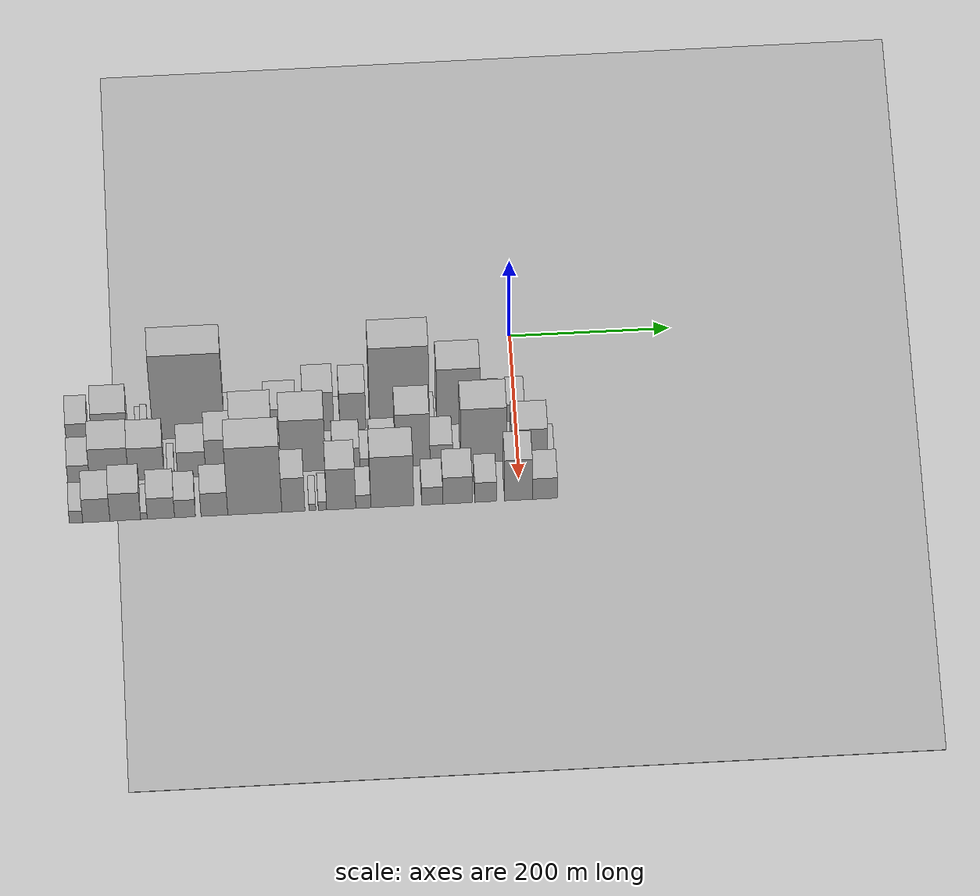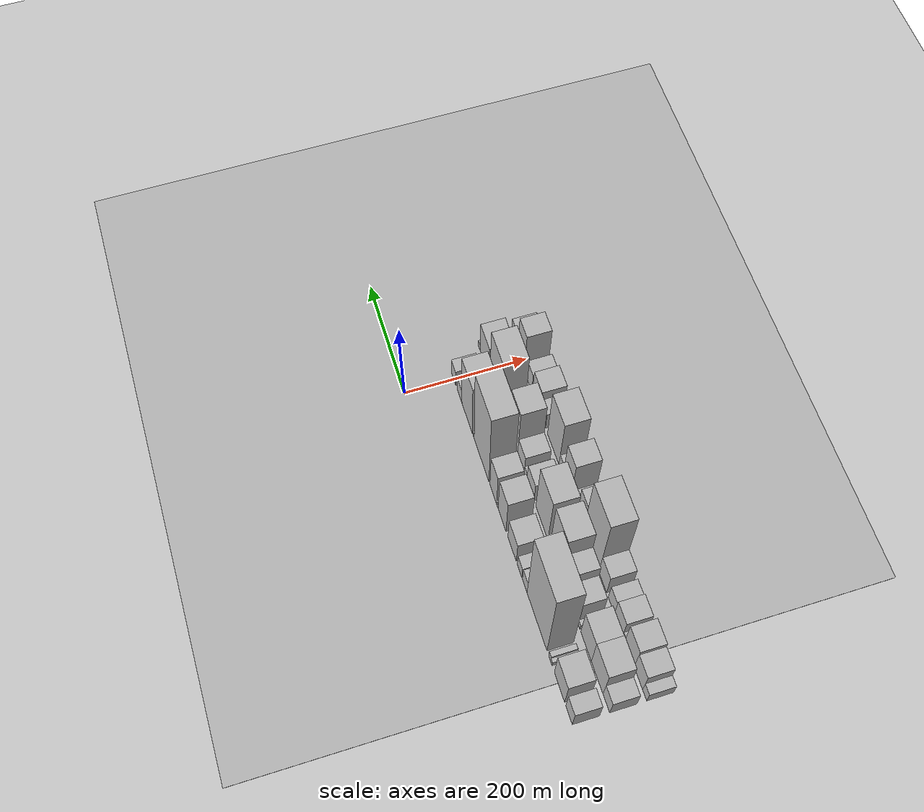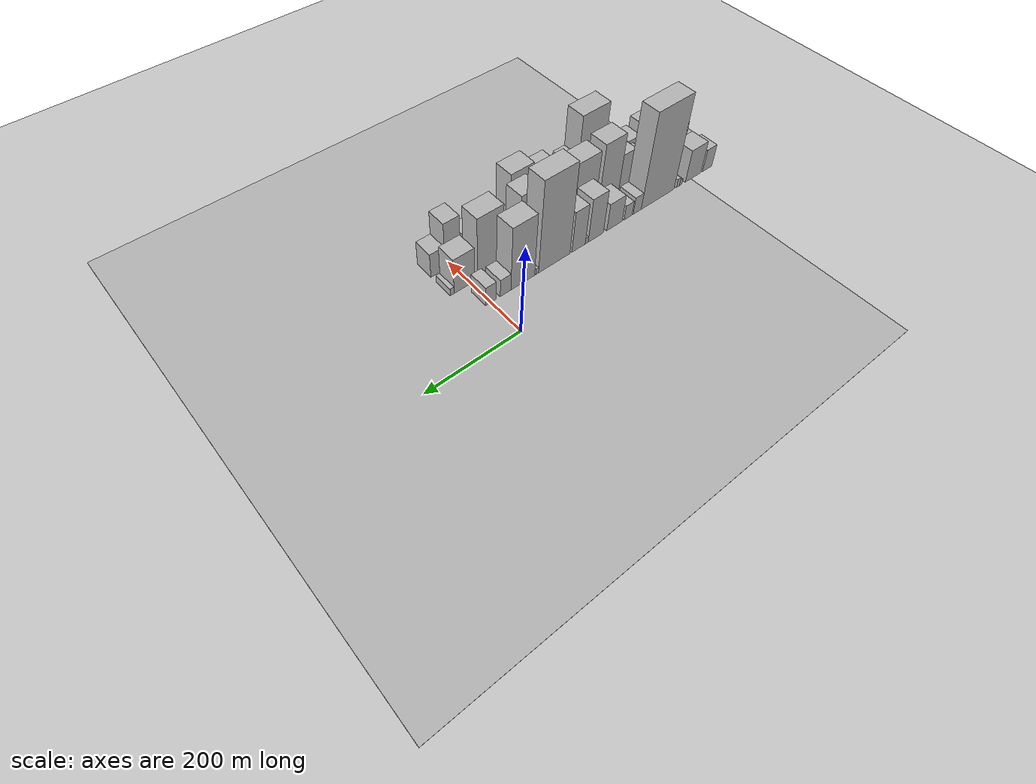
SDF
<sdf version="1.6">
 <world name="default">
  <include><name>ground_plane_1</name><uri>model://HANNAS_ground_plane</uri></include>
  <include>
   <name>ground_plane_2</name>
   <uri>model://HANNAS_ground_plane</uri>
   <pose>100 0 0  0 0 0</pose>
  </include>
  <model name="building_1">
   <static>1</static>
   <pose>100.0000 -546.4827 0 0.000000 0.000000 0.000000</pose>
   <link name="link">
    <pose>0 0 27.00 0 0 0</pose>
    <collision name="collision"><geometry><box><size>40.0000 27.0345 54.0000</size></box></geometry></collision>
    <visual name="visual">
     <cast_shadows>0</cast_shadows>
     <geometry><box><size>40.0000 27.0345 54.0000</size></box></geometry>
     <material>
      <script>
       <uri>model://HANNAS_wall/materials/scripts</uri>
       <uri>model://HANNAS_wall/materials/textures</uri>
       <name>vrc/HANNAS_wall</name>
      </script>
     </material>
    </visual>
   </link>
  </model>
  <model name="building_2">
   <static>1</static>
   <pose>100.0000 -505.8893 0 0.000000 0.000000 0.000000</pose>
   <link name="link">
    <pose>0 0 39.00 0 0 0</pose>
    <collision name="collision"><geometry><box><size>40.0000 44.1524 78.0000</size></box></geometry></collision>
    <visual name="visual">
     <cast_shadows>0</cast_shadows>
     <geometry><box><size>40.0000 44.1524 78.0000</size></box></geometry>
     <material>
      <script>
       <uri>model://HANNAS_wall/materials/scripts</uri>
       <uri>model://HANNAS_wall/materials/textures</uri>
       <name>vrc/HANNAS_wall</name>
      </script>
     </material>
    </visual>
   </link>
  </model>
  <model name="building_3">
   <static>1</static>
   <pose>100.0000 -470.5496 0 0.000000 0.000000 0.000000</pose>
   <link name="link">
    <pose>0 0 7.50 0 0 0</pose>
    <collision name="collision"><geometry><box><size>40.0000 6.5270 15.0000</size></box></geometry></collision>
    <visual name="visual">
     <cast_shadows>0</cast_shadows>
     <geometry><box><size>40.0000 6.5270 15.0000</size></box></geometry>
     <material>
      <script>
       <uri>model://HANNAS_wall/materials/scripts</uri>
       <uri>model://HANNAS_wall/materials/textures</uri>
       <name>vrc/HANNAS_wall</name>
      </script>
     </material>
    </visual>
   </link>
  </model>
  <model name="building_4">
   <static>1</static>
   <pose>100.0000 -462.9985 0 0.000000 0.000000 0.000000</pose>
   <link name="link">
    <pose>0 0 10.50 0 0 0</pose>
    <collision name="collision"><geometry><box><size>40.0000 8.5751 21.0000</size></box></geometry></collision>
    <visual name="visual">
     <cast_shadows>0</cast_shadows>
     <geometry><box><size>40.0000 8.5751 21.0000</size></box></geometry>
     <material>
      <script>
       <uri>model://HANNAS_wall/materials/scripts</uri>
       <uri>model://HANNAS_wall/materials/textures</uri>
       <name>vrc/HANNAS_wall</name>
      </script>
     </material>
    </visual>
   </link>
  </model>
  <model name="building_5">
   <static>1</static>
   <pose>100.0000 -407.1625 0 0.000000 0.000000 0.000000</pose>
   <link name="link">
    <pose>0 0 112.50 0 0 0</pose>
    <collision name="collision"><geometry><box><size>40.0000 89.0970 225.0000</size></box></geometry></collision>
    <visual name="visual">
     <cast_shadows>0</cast_shadows>
     <geometry><box><size>40.0000 89.0970 225.0000</size></box></geometry>
     <material>
      <script>
       <uri>model://HANNAS_wall/materials/scripts</uri>
       <uri>model://HANNAS_wall/materials/textures</uri>
       <name>vrc/HANNAS_wall</name>
      </script>
     </material>
    </visual>
   </link>
  </model>
  <model name="building_6">
   <static>1</static>
   <pose>100.0000 -352.0170 0 0.000000 0.000000 0.000000</pose>
   <link name="link">
    <pose>0 0 21.00 0 0 0</pose>
    <collision name="collision"><geometry><box><size>40.0000 21.1940 42.0000</size></box></geometry></collision>
    <visual name="visual">
     <cast_shadows>0</cast_shadows>
     <geometry><box><size>40.0000 21.1940 42.0000</size></box></geometry>
     <material>
      <script>
       <uri>model://HANNAS_wall/materials/scripts</uri>
       <uri>model://HANNAS_wall/materials/textures</uri>
       <name>vrc/HANNAS_wall</name>
      </script>
     </material>
    </visual>
   </link>
  </model>
  <model name="building_7">
   <static>1</static>
   <pose>100.0000 -328.0672 0 0.000000 0.000000 0.000000</pose>
   <link name="link">
    <pose>0 0 18.00 0 0 0</pose>
    <collision name="collision"><geometry><box><size>40.0000 20.7055 36.0000</size></box></geometry></collision>
    <visual name="visual">
     <cast_shadows>0</cast_shadows>
     <geometry><box><size>40.0000 20.7055 36.0000</size></box></geometry>
     <material>
      <script>
       <uri>model://HANNAS_wall/materials/scripts</uri>
       <uri>model://HANNAS_wall/materials/textures</uri>
       <name>vrc/HANNAS_wall</name>
      </script>
     </material>
    </visual>
   </link>
  </model>
  <model name="building_8">
   <static>1</static>
   <pose>100.0000 -292.9577 0 0.000000 0.000000 0.000000</pose>
   <link name="link">
    <pose>0 0 33.00 0 0 0</pose>
    <collision name="collision"><geometry><box><size>40.0000 39.5136 66.0000</size></box></geometry></collision>
    <visual name="visual">
     <cast_shadows>0</cast_shadows>
     <geometry><box><size>40.0000 39.5136 66.0000</size></box></geometry>
     <material>
      <script>
       <uri>model://HANNAS_wall/materials/scripts</uri>
       <uri>model://HANNAS_wall/materials/textures</uri>
       <name>vrc/HANNAS_wall</name>
      </script>
     </material>
    </visual>
   </link>
  </model>
  <model name="building_9">
   <static>1</static>
   <pose>100.0000 -245.3220 0 0.000000 0.000000 0.000000</pose>
   <link name="link">
    <pose>0 0 52.50 0 0 0</pose>
    <collision name="collision"><geometry><box><size>40.0000 37.7578 105.0000</size></box></geometry></collision>
    <visual name="visual">
     <cast_shadows>0</cast_shadows>
     <geometry><box><size>40.0000 37.7578 105.0000</size></box></geometry>
     <material>
      <script>
       <uri>model://HANNAS_wall/materials/scripts</uri>
       <uri>model://HANNAS_wall/materials/textures</uri>
       <name>vrc/HANNAS_wall</name>
      </script>
     </material>
    </visual>
   </link>
  </model>
  <model name="building_10">
   <static>1</static>
   <pose>100.0000 -222.7115 0 0.000000 0.000000 0.000000</pose>
   <link name="link">
    <pose>0 0 7.50 0 0 0</pose>
    <collision name="collision"><geometry><box><size>40.0000 7.4633 15.0000</size></box></geometry></collision>
    <visual name="visual">
     <cast_shadows>0</cast_shadows>
     <geometry><box><size>40.0000 7.4633 15.0000</size></box></geometry>
     <material>
      <script>
       <uri>model://HANNAS_wall/materials/scripts</uri>
       <uri>model://HANNAS_wall/materials/textures</uri>
       <name>vrc/HANNAS_wall</name>
      </script>
     </material>
    </visual>
   </link>
  </model>
  <model name="building_11">
   <static>1</static>
   <pose>100.0000 -202.6942 0 0.000000 0.000000 0.000000</pose>
   <link name="link">
    <pose>0 0 49.50 0 0 0</pose>
    <collision name="collision"><geometry><box><size>40.0000 32.5713 99.0000</size></box></geometry></collision>
    <visual name="visual">
     <cast_shadows>0</cast_shadows>
     <geometry><box><size>40.0000 32.5713 99.0000</size></box></geometry>
     <material>
      <script>
       <uri>model://HANNAS_wall/materials/scripts</uri>
       <uri>model://HANNAS_wall/materials/textures</uri>
       <name>vrc/HANNAS_wall</name>
      </script>
     </material>
    </visual>
   </link>
  </model>
  <model name="building_12">
   <static>1</static>
   <pose>100.0000 -144.2849 0 0.000000 0.000000 0.000000</pose>
   <link name="link">
    <pose>0 0 108.00 0 0 0</pose>
    <collision name="collision"><geometry><box><size>40.0000 74.2475 216.0000</size></box></geometry></collision>
    <visual name="visual">
     <cast_shadows>0</cast_shadows>
     <geometry><box><size>40.0000 74.2475 216.0000</size></box></geometry>
     <material>
      <script>
       <uri>model://HANNAS_wall/materials/scripts</uri>
       <uri>model://HANNAS_wall/materials/textures</uri>
       <name>vrc/HANNAS_wall</name>
      </script>
     </material>
    </visual>
   </link>
  </model>
  <model name="building_13">
   <static>1</static>
   <pose>100.0000 -104.0315 0 0.000000 0.000000 0.000000</pose>
   <link name="link">
    <pose>0 0 7.50 0 0 0</pose>
    <collision name="collision"><geometry><box><size>40.0000 6.2592 15.0000</size></box></geometry></collision>
    <visual name="visual">
     <cast_shadows>0</cast_shadows>
     <geometry><box><size>40.0000 6.2592 15.0000</size></box></geometry>
     <material>
      <script>
       <uri>model://HANNAS_wall/materials/scripts</uri>
       <uri>model://HANNAS_wall/materials/textures</uri>
       <name>vrc/HANNAS_wall</name>
      </script>
     </material>
    </visual>
   </link>
  </model>
  <model name="building_14">
   <static>1</static>
   <pose>100.0000 -70.8796 0 0.000000 0.000000 0.000000</pose>
   <link name="link">
    <pose>0 0 75.00 0 0 0</pose>
    <collision name="collision"><geometry><box><size>40.0000 54.0445 150.0000</size></box></geometry></collision>
    <visual name="visual">
     <cast_shadows>0</cast_shadows>
     <geometry><box><size>40.0000 54.0445 150.0000</size></box></geometry>
     <material>
      <script>
       <uri>model://HANNAS_wall/materials/scripts</uri>
       <uri>model://HANNAS_wall/materials/textures</uri>
       <name>vrc/HANNAS_wall</name>
      </script>
     </material>
    </visual>
   </link>
  </model>
  <model name="building_15">
   <static>1</static>
   <pose>100.0000 -31.9714 0 0.000000 0.000000 0.000000</pose>
   <link name="link">
    <pose>0 0 21.00 0 0 0</pose>
    <collision name="collision"><geometry><box><size>40.0000 23.7720 42.0000</size></box></geometry></collision>
    <visual name="visual">
     <cast_shadows>0</cast_shadows>
     <geometry><box><size>40.0000 23.7720 42.0000</size></box></geometry>
     <material>
      <script>
       <uri>model://HANNAS_wall/materials/scripts</uri>
       <uri>model://HANNAS_wall/materials/textures</uri>
       <name>vrc/HANNAS_wall</name>
      </script>
     </material>
    </visual>
   </link>
  </model>
  <model name="building_16">
   <static>1</static>
   <pose>100.0000 0.2246 0 0.000000 0.000000 0.000000</pose>
   <link name="link">
    <pose>0 0 22.50 0 0 0</pose>
    <collision name="collision"><geometry><box><size>40.0000 22.6201 45.0000</size></box></geometry></collision>
    <visual name="visual">
     <cast_shadows>0</cast_shadows>
     <geometry><box><size>40.0000 22.6201 45.0000</size></box></geometry>
     <material>
      <script>
       <uri>model://HANNAS_wall/materials/scripts</uri>
       <uri>model://HANNAS_wall/materials/textures</uri>
       <name>vrc/HANNAS_wall</name>
      </script>
     </material>
    </visual>
   </link>
  </model>
  <model name="building_36">
   <static>1</static>
   <pose>155.0000 -546.4578 0 0.000000 0.000000 0.000000</pose>
   <link name="link">
    <pose>0 0 24.00 0 0 0</pose>
    <collision name="collision"><geometry><box><size>40.0000 27.0844 48.0000</size></box></geometry></collision>
    <visual name="visual">
     <cast_shadows>0</cast_shadows>
     <geometry><box><size>40.0000 27.0844 48.0000</size></box></geometry>
     <material>
      <script>
       <uri>model://HANNAS_wall/materials/scripts</uri>
       <uri>model://HANNAS_wall/materials/textures</uri>
       <name>vrc/HANNAS_wall</name>
      </script>
     </material>
    </visual>
   </link>
  </model>
  <model name="building_37">
   <static>1</static>
   <pose>155.0000 -508.7451 0 0.000000 0.000000 0.000000</pose>
   <link name="link">
    <pose>0 0 45.00 0 0 0</pose>
    <collision name="collision"><geometry><box><size>40.0000 48.3409 90.0000</size></box></geometry></collision>
    <visual name="visual">
     <cast_shadows>0</cast_shadows>
     <geometry><box><size>40.0000 48.3409 90.0000</size></box></geometry>
     <material>
      <script>
       <uri>model://HANNAS_wall/materials/scripts</uri>
       <uri>model://HANNAS_wall/materials/textures</uri>
       <name>vrc/HANNAS_wall</name>
      </script>
     </material>
    </visual>
   </link>
  </model>
  <model name="building_38">
   <static>1</static>
   <pose>155.0000 -462.3962 0 0.000000 0.000000 0.000000</pose>
   <link name="link">
    <pose>0 0 43.50 0 0 0</pose>
    <collision name="collision"><geometry><box><size>40.0000 44.3568 87.0000</size></box></geometry></collision>
    <visual name="visual">
     <cast_shadows>0</cast_shadows>
     <geometry><box><size>40.0000 44.3568 87.0000</size></box></geometry>
     <material>
      <script>
       <uri>model://HANNAS_wall/materials/scripts</uri>
       <uri>model://HANNAS_wall/materials/textures</uri>
       <name>vrc/HANNAS_wall</name>
      </script>
     </material>
    </visual>
   </link>
  </model>
  <model name="building_39">
   <static>1</static>
   <pose>155.0000 -431.8418 0 0.000000 0.000000 0.000000</pose>
   <link name="link">
    <pose>0 0 9.00 0 0 0</pose>
    <collision name="collision"><geometry><box><size>40.0000 8.7520 18.0000</size></box></geometry></collision>
    <visual name="visual">
     <cast_shadows>0</cast_shadows>
     <geometry><box><size>40.0000 8.7520 18.0000</size></box></geometry>
     <material>
      <script>
       <uri>model://HANNAS_wall/materials/scripts</uri>
       <uri>model://HANNAS_wall/materials/textures</uri>
       <name>vrc/HANNAS_wall</name>
      </script>
     </material>
    </visual>
   </link>
  </model>
  <model name="building_40">
   <static>1</static>
   <pose>155.0000 -405.9061 0 0.000000 0.000000 0.000000</pose>
   <link name="link">
    <pose>0 0 34.50 0 0 0</pose>
    <collision name="collision"><geometry><box><size>40.0000 35.1195 69.0000</size></box></geometry></collision>
    <visual name="visual">
     <cast_shadows>0</cast_shadows>
     <geometry><box><size>40.0000 35.1195 69.0000</size></box></geometry>
     <material>
      <script>
       <uri>model://HANNAS_wall/materials/scripts</uri>
       <uri>model://HANNAS_wall/materials/textures</uri>
       <name>vrc/HANNAS_wall</name>
      </script>
     </material>
    </visual>
   </link>
  </model>
  <model name="building_41">
   <static>1</static>
   <pose>155.0000 -372.1673 0 0.000000 0.000000 0.000000</pose>
   <link name="link">
    <pose>0 0 49.50 0 0 0</pose>
    <collision name="collision"><geometry><box><size>40.0000 32.3580 99.0000</size></box></geometry></collision>
    <visual name="visual">
     <cast_shadows>0</cast_shadows>
     <geometry><box><size>40.0000 32.3580 99.0000</size></box></geometry>
     <material>
      <script>
       <uri>model://HANNAS_wall/materials/scripts</uri>
       <uri>model://HANNAS_wall/materials/textures</uri>
       <name>vrc/HANNAS_wall</name>
      </script>
     </material>
    </visual>
   </link>
  </model>
  <model name="building_42">
   <static>1</static>
   <pose>155.0000 -330.2825 0 0.000000 0.000000 0.000000</pose>
   <link name="link">
    <pose>0 0 75.00 0 0 0</pose>
    <collision name="collision"><geometry><box><size>40.0000 51.4116 150.0000</size></box></geometry></collision>
    <visual name="visual">
     <cast_shadows>0</cast_shadows>
     <geometry><box><size>40.0000 51.4116 150.0000</size></box></geometry>
     <material>
      <script>
       <uri>model://HANNAS_wall/materials/scripts</uri>
       <uri>model://HANNAS_wall/materials/textures</uri>
       <name>vrc/HANNAS_wall</name>
      </script>
     </material>
    </visual>
   </link>
  </model>
  <model name="building_43">
   <static>1</static>
   <pose>155.0000 -299.7764 0 0.000000 0.000000 0.000000</pose>
   <link name="link">
    <pose>0 0 12.00 0 0 0</pose>
    <collision name="collision"><geometry><box><size>40.0000 9.6006 24.0000</size></box></geometry></collision>
    <visual name="visual">
     <cast_shadows>0</cast_shadows>
     <geometry><box><size>40.0000 9.6006 24.0000</size></box></geometry>
     <material>
      <script>
       <uri>model://HANNAS_wall/materials/scripts</uri>
       <uri>model://HANNAS_wall/materials/textures</uri>
       <name>vrc/HANNAS_wall</name>
      </script>
     </material>
    </visual>
   </link>
  </model>
  <model name="building_44">
   <static>1</static>
   <pose>155.0000 -267.2035 0 0.000000 0.000000 0.000000</pose>
   <link name="link">
    <pose>0 0 70.50 0 0 0</pose>
    <collision name="collision"><geometry><box><size>40.0000 55.5452 141.0000</size></box></geometry></collision>
    <visual name="visual">
     <cast_shadows>0</cast_shadows>
     <geometry><box><size>40.0000 55.5452 141.0000</size></box></geometry>
     <material>
      <script>
       <uri>model://HANNAS_wall/materials/scripts</uri>
       <uri>model://HANNAS_wall/materials/textures</uri>
       <name>vrc/HANNAS_wall</name>
      </script>
     </material>
    </visual>
   </link>
  </model>
  <model name="building_45">
   <static>1</static>
   <pose>155.0000 -213.5299 0 0.000000 0.000000 0.000000</pose>
   <link name="link">
    <pose>0 0 28.50 0 0 0</pose>
    <collision name="collision"><geometry><box><size>40.0000 33.8022 57.0000</size></box></geometry></collision>
    <visual name="visual">
     <cast_shadows>0</cast_shadows>
     <geometry><box><size>40.0000 33.8022 57.0000</size></box></geometry>
     <material>
      <script>
       <uri>model://HANNAS_wall/materials/scripts</uri>
       <uri>model://HANNAS_wall/materials/textures</uri>
       <name>vrc/HANNAS_wall</name>
      </script>
     </material>
    </visual>
   </link>
  </model>
  <model name="building_46">
   <static>1</static>
   <pose>155.0000 -190.4386 0 0.000000 0.000000 0.000000</pose>
   <link name="link">
    <pose>0 0 13.50 0 0 0</pose>
    <collision name="collision"><geometry><box><size>40.0000 12.3804 27.0000</size></box></geometry></collision>
    <visual name="visual">
     <cast_shadows>0</cast_shadows>
     <geometry><box><size>40.0000 12.3804 27.0000</size></box></geometry>
     <material>
      <script>
       <uri>model://HANNAS_wall/materials/scripts</uri>
       <uri>model://HANNAS_wall/materials/textures</uri>
       <name>vrc/HANNAS_wall</name>
      </script>
     </material>
    </visual>
   </link>
  </model>
  <model name="building_47">
   <static>1</static>
   <pose>155.0000 -168.1989 0 0.000000 0.000000 0.000000</pose>
   <link name="link">
    <pose>0 0 28.50 0 0 0</pose>
    <collision name="collision"><geometry><box><size>40.0000 32.0989 57.0000</size></box></geometry></collision>
    <visual name="visual">
     <cast_shadows>0</cast_shadows>
     <geometry><box><size>40.0000 32.0989 57.0000</size></box></geometry>
     <material>
      <script>
       <uri>model://HANNAS_wall/materials/scripts</uri>
       <uri>model://HANNAS_wall/materials/textures</uri>
       <name>vrc/HANNAS_wall</name>
      </script>
     </material>
    </visual>
   </link>
  </model>
  <model name="building_48">
   <static>1</static>
   <pose>155.0000 -130.7541 0 0.000000 0.000000 0.000000</pose>
   <link name="link">
    <pose>0 0 70.50 0 0 0</pose>
    <collision name="collision"><geometry><box><size>40.0000 42.7907 141.0000</size></box></geometry></collision>
    <visual name="visual">
     <cast_shadows>0</cast_shadows>
     <geometry><box><size>40.0000 42.7907 141.0000</size></box></geometry>
     <material>
      <script>
       <uri>model://HANNAS_wall/materials/scripts</uri>
       <uri>model://HANNAS_wall/materials/textures</uri>
       <name>vrc/HANNAS_wall</name>
      </script>
     </material>
    </visual>
   </link>
  </model>
  <model name="building_49">
   <static>1</static>
   <pose>155.0000 -95.1985 0 0.000000 0.000000 0.000000</pose>
   <link name="link">
    <pose>0 0 27.00 0 0 0</pose>
    <collision name="collision"><geometry><box><size>40.0000 28.3204 54.0000</size></box></geometry></collision>
    <visual name="visual">
     <cast_shadows>0</cast_shadows>
     <geometry><box><size>40.0000 28.3204 54.0000</size></box></geometry>
     <material>
      <script>
       <uri>model://HANNAS_wall/materials/scripts</uri>
       <uri>model://HANNAS_wall/materials/textures</uri>
       <name>vrc/HANNAS_wall</name>
      </script>
     </material>
    </visual>
   </link>
  </model>
  <model name="building_50">
   <static>1</static>
   <pose>155.0000 -42.5149 0 0.000000 0.000000 0.000000</pose>
   <link name="link">
    <pose>0 0 73.50 0 0 0</pose>
    <collision name="collision"><geometry><box><size>40.0000 57.0469 147.0000</size></box></geometry></collision>
    <visual name="visual">
     <cast_shadows>0</cast_shadows>
     <geometry><box><size>40.0000 57.0469 147.0000</size></box></geometry>
     <material>
      <script>
       <uri>model://HANNAS_wall/materials/scripts</uri>
       <uri>model://HANNAS_wall/materials/textures</uri>
       <name>vrc/HANNAS_wall</name>
      </script>
     </material>
    </visual>
   </link>
  </model>
  <model name="building_51">
   <static>1</static>
   <pose>155.0000 14.4731 0 0.000000 0.000000 0.000000</pose>
   <link name="link">
    <pose>0 0 42.00 0 0 0</pose>
    <collision name="collision"><geometry><box><size>40.0000 44.9290 84.0000</size></box></geometry></collision>
    <visual name="visual">
     <cast_shadows>0</cast_shadows>
     <geometry><box><size>40.0000 44.9290 84.0000</size></box></geometry>
     <material>
      <script>
       <uri>model://HANNAS_wall/materials/scripts</uri>
       <uri>model://HANNAS_wall/materials/textures</uri>
       <name>vrc/HANNAS_wall</name>
      </script>
     </material>
    </visual>
   </link>
  </model>
  <model name="building_52">
   <static>1</static>
   <pose>155.0000 41.1612 0 0.000000 0.000000 0.000000</pose>
   <link name="link">
    <pose>0 0 9.00 0 0 0</pose>
    <collision name="collision"><geometry><box><size>40.0000 8.4472 18.0000</size></box></geometry></collision>
    <visual name="visual">
     <cast_shadows>0</cast_shadows>
     <geometry><box><size>40.0000 8.4472 18.0000</size></box></geometry>
     <material>
      <script>
       <uri>model://HANNAS_wall/materials/scripts</uri>
       <uri>model://HANNAS_wall/materials/textures</uri>
       <name>vrc/HANNAS_wall</name>
      </script>
     </material>
    </visual>
   </link>
  </model>
  <model name="building_71">
   <static>1</static>
   <pose>210.0000 -551.7180 0 0.000000 0.000000 0.000000</pose>
   <link name="link">
    <pose>0 0 16.50 0 0 0</pose>
    <collision name="collision"><geometry><box><size>40.0000 16.5641 33.0000</size></box></geometry></collision>
    <visual name="visual">
     <cast_shadows>0</cast_shadows>
     <geometry><box><size>40.0000 16.5641 33.0000</size></box></geometry>
     <material>
      <script>
       <uri>model://HANNAS_wall/materials/scripts</uri>
       <uri>model://HANNAS_wall/materials/textures</uri>
       <name>vrc/HANNAS_wall</name>
      </script>
     </material>
    </visual>
   </link>
  </model>
  <model name="building_72">
   <static>1</static>
   <pose>210.0000 -526.5899 0 0.000000 0.000000 0.000000</pose>
   <link name="link">
    <pose>0 0 31.50 0 0 0</pose>
    <collision name="collision"><geometry><box><size>40.0000 33.6921 63.0000</size></box></geometry></collision>
    <visual name="visual">
     <cast_shadows>0</cast_shadows>
     <geometry><box><size>40.0000 33.6921 63.0000</size></box></geometry>
     <material>
      <script>
       <uri>model://HANNAS_wall/materials/scripts</uri>
       <uri>model://HANNAS_wall/materials/textures</uri>
       <name>vrc/HANNAS_wall</name>
      </script>
     </material>
    </visual>
   </link>
  </model>
  <model name="building_73">
   <static>1</static>
   <pose>210.0000 -490.7086 0 0.000000 0.000000 0.000000</pose>
   <link name="link">
    <pose>0 0 37.50 0 0 0</pose>
    <collision name="collision"><geometry><box><size>40.0000 38.0703 75.0000</size></box></geometry></collision>
    <visual name="visual">
     <cast_shadows>0</cast_shadows>
     <geometry><box><size>40.0000 38.0703 75.0000</size></box></geometry>
     <material>
      <script>
       <uri>model://HANNAS_wall/materials/scripts</uri>
       <uri>model://HANNAS_wall/materials/textures</uri>
       <name>vrc/HANNAS_wall</name>
      </script>
     </material>
    </visual>
   </link>
  </model>
  <model name="building_74">
   <static>1</static>
   <pose>210.0000 -467.5456 0 0.000000 0.000000 0.000000</pose>
   <link name="link">
    <pose>0 0 9.00 0 0 0</pose>
    <collision name="collision"><geometry><box><size>40.0000 8.2558 18.0000</size></box></geometry></collision>
    <visual name="visual">
     <cast_shadows>0</cast_shadows>
     <geometry><box><size>40.0000 8.2558 18.0000</size></box></geometry>
     <material>
      <script>
       <uri>model://HANNAS_wall/materials/scripts</uri>
       <uri>model://HANNAS_wall/materials/textures</uri>
       <name>vrc/HANNAS_wall</name>
      </script>
     </material>
    </visual>
   </link>
  </model>
  <model name="building_75">
   <static>1</static>
   <pose>210.0000 -446.4771 0 0.000000 0.000000 0.000000</pose>
   <link name="link">
    <pose>0 0 28.50 0 0 0</pose>
    <collision name="collision"><geometry><box><size>40.0000 33.8811 57.0000</size></box></geometry></collision>
    <visual name="visual">
     <cast_shadows>0</cast_shadows>
     <geometry><box><size>40.0000 33.8811 57.0000</size></box></geometry>
     <material>
      <script>
       <uri>model://HANNAS_wall/materials/scripts</uri>
       <uri>model://HANNAS_wall/materials/textures</uri>
       <name>vrc/HANNAS_wall</name>
      </script>
     </material>
    </visual>
   </link>
  </model>
  <model name="building_76">
   <static>1</static>
   <pose>210.0000 -416.6348 0 0.000000 0.000000 0.000000</pose>
   <link name="link">
    <pose>0 0 24.00 0 0 0</pose>
    <collision name="collision"><geometry><box><size>40.0000 25.8036 48.0000</size></box></geometry></collision>
    <visual name="visual">
     <cast_shadows>0</cast_shadows>
     <geometry><box><size>40.0000 25.8036 48.0000</size></box></geometry>
     <material>
      <script>
       <uri>model://HANNAS_wall/materials/scripts</uri>
       <uri>model://HANNAS_wall/materials/textures</uri>
       <name>vrc/HANNAS_wall</name>
      </script>
     </material>
    </visual>
   </link>
  </model>
  <model name="building_77">
   <static>1</static>
   <pose>210.0000 -380.1408 0 0.000000 0.000000 0.000000</pose>
   <link name="link">
    <pose>0 0 31.50 0 0 0</pose>
    <collision name="collision"><geometry><box><size>40.0000 33.1842 63.0000</size></box></geometry></collision>
    <visual name="visual">
     <cast_shadows>0</cast_shadows>
     <geometry><box><size>40.0000 33.1842 63.0000</size></box></geometry>
     <material>
      <script>
       <uri>model://HANNAS_wall/materials/scripts</uri>
       <uri>model://HANNAS_wall/materials/textures</uri>
       <name>vrc/HANNAS_wall</name>
      </script>
     </material>
    </visual>
   </link>
  </model>
  <model name="building_78">
   <static>1</static>
   <pose>210.0000 -329.9903 0 0.000000 0.000000 0.000000</pose>
   <link name="link">
    <pose>0 0 91.50 0 0 0</pose>
    <collision name="collision"><geometry><box><size>40.0000 67.1169 183.0000</size></box></geometry></collision>
    <visual name="visual">
     <cast_shadows>0</cast_shadows>
     <geometry><box><size>40.0000 67.1169 183.0000</size></box></geometry>
     <material>
      <script>
       <uri>model://HANNAS_wall/materials/scripts</uri>
       <uri>model://HANNAS_wall/materials/textures</uri>
       <name>vrc/HANNAS_wall</name>
      </script>
     </material>
    </visual>
   </link>
  </model>
  <model name="building_79">
   <static>1</static>
   <pose>210.0000 -282.1036 0 0.000000 0.000000 0.000000</pose>
   <link name="link">
    <pose>0 0 46.50 0 0 0</pose>
    <collision name="collision"><geometry><box><size>40.0000 28.6565 93.0000</size></box></geometry></collision>
    <visual name="visual">
     <cast_shadows>0</cast_shadows>
     <geometry><box><size>40.0000 28.6565 93.0000</size></box></geometry>
     <material>
      <script>
       <uri>model://HANNAS_wall/materials/scripts</uri>
       <uri>model://HANNAS_wall/materials/textures</uri>
       <name>vrc/HANNAS_wall</name>
      </script>
     </material>
    </visual>
   </link>
  </model>
  <model name="building_80">
   <static>1</static>
   <pose>210.0000 -258.4811 0 0.000000 0.000000 0.000000</pose>
   <link name="link">
    <pose>0 0 9.00 0 0 0</pose>
    <collision name="collision"><geometry><box><size>40.0000 8.5886 18.0000</size></box></geometry></collision>
    <visual name="visual">
     <cast_shadows>0</cast_shadows>
     <geometry><box><size>40.0000 8.5886 18.0000</size></box></geometry>
     <material>
      <script>
       <uri>model://HANNAS_wall/materials/scripts</uri>
       <uri>model://HANNAS_wall/materials/textures</uri>
       <name>vrc/HANNAS_wall</name>
      </script>
     </material>
    </visual>
   </link>
  </model>
  <model name="building_81">
   <static>1</static>
   <pose>210.0000 -245.9738 0 0.000000 0.000000 0.000000</pose>
   <link name="link">
    <pose>0 0 12.00 0 0 0</pose>
    <collision name="collision"><geometry><box><size>40.0000 10.4260 24.0000</size></box></geometry></collision>
    <visual name="visual">
     <cast_shadows>0</cast_shadows>
     <geometry><box><size>40.0000 10.4260 24.0000</size></box></geometry>
     <material>
      <script>
       <uri>model://HANNAS_wall/materials/scripts</uri>
       <uri>model://HANNAS_wall/materials/textures</uri>
       <name>vrc/HANNAS_wall</name>
      </script>
     </material>
    </visual>
   </link>
  </model>
  <model name="building_82">
   <static>1</static>
   <pose>210.0000 -222.6759 0 0.000000 0.000000 0.000000</pose>
   <link name="link">
    <pose>0 0 55.50 0 0 0</pose>
    <collision name="collision"><geometry><box><size>40.0000 36.1696 111.0000</size></box></geometry></collision>
    <visual name="visual">
     <cast_shadows>0</cast_shadows>
     <geometry><box><size>40.0000 36.1696 111.0000</size></box></geometry>
     <material>
      <script>
       <uri>model://HANNAS_wall/materials/scripts</uri>
       <uri>model://HANNAS_wall/materials/textures</uri>
       <name>vrc/HANNAS_wall</name>
      </script>
     </material>
    </visual>
   </link>
  </model>
  <model name="building_83">
   <static>1</static>
   <pose>210.0000 -195.2493 0 0.000000 0.000000 0.000000</pose>
   <link name="link">
    <pose>0 0 18.00 0 0 0</pose>
    <collision name="collision"><geometry><box><size>40.0000 18.6837 36.0000</size></box></geometry></collision>
    <visual name="visual">
     <cast_shadows>0</cast_shadows>
     <geometry><box><size>40.0000 18.6837 36.0000</size></box></geometry>
     <material>
      <script>
       <uri>model://HANNAS_wall/materials/scripts</uri>
       <uri>model://HANNAS_wall/materials/textures</uri>
       <name>vrc/HANNAS_wall</name>
      </script>
     </material>
    </visual>
   </link>
  </model>
  <model name="building_84">
   <static>1</static>
   <pose>210.0000 -159.2243 0 0.000000 0.000000 0.000000</pose>
   <link name="link">
    <pose>0 0 69.00 0 0 0</pose>
    <collision name="collision"><geometry><box><size>40.0000 53.3663 138.0000</size></box></geometry></collision>
    <visual name="visual">
     <cast_shadows>0</cast_shadows>
     <geometry><box><size>40.0000 53.3663 138.0000</size></box></geometry>
     <material>
      <script>
       <uri>model://HANNAS_wall/materials/scripts</uri>
       <uri>model://HANNAS_wall/materials/textures</uri>
       <name>vrc/HANNAS_wall</name>
      </script>
     </material>
    </visual>
   </link>
  </model>
  <model name="building_85">
   <static>1</static>
   <pose>210.0000 -109.4677 0 0.000000 0.000000 0.000000</pose>
   <link name="link">
    <pose>0 0 24.00 0 0 0</pose>
    <collision name="collision"><geometry><box><size>40.0000 26.1469 48.0000</size></box></geometry></collision>
    <visual name="visual">
     <cast_shadows>0</cast_shadows>
     <geometry><box><size>40.0000 26.1469 48.0000</size></box></geometry>
     <material>
      <script>
       <uri>model://HANNAS_wall/materials/scripts</uri>
       <uri>model://HANNAS_wall/materials/textures</uri>
       <name>vrc/HANNAS_wall</name>
      </script>
     </material>
    </visual>
   </link>
  </model>
  <model name="building_86">
   <static>1</static>
   <pose>210.0000 -78.0036 0 0.000000 0.000000 0.000000</pose>
   <link name="link">
    <pose>0 0 36.00 0 0 0</pose>
    <collision name="collision"><geometry><box><size>40.0000 36.7814 72.0000</size></box></geometry></collision>
    <visual name="visual">
     <cast_shadows>0</cast_shadows>
     <geometry><box><size>40.0000 36.7814 72.0000</size></box></geometry>
     <material>
      <script>
       <uri>model://HANNAS_wall/materials/scripts</uri>
       <uri>model://HANNAS_wall/materials/textures</uri>
       <name>vrc/HANNAS_wall</name>
      </script>
     </material>
    </visual>
   </link>
  </model>
  <model name="building_87">
   <static>1</static>
   <pose>210.0000 -43.0769 0 0.000000 0.000000 0.000000</pose>
   <link name="link">
    <pose>0 0 27.00 0 0 0</pose>
    <collision name="collision"><geometry><box><size>40.0000 27.0719 54.0000</size></box></geometry></collision>
    <visual name="visual">
     <cast_shadows>0</cast_shadows>
     <geometry><box><size>40.0000 27.0719 54.0000</size></box></geometry>
     <material>
      <script>
       <uri>model://HANNAS_wall/materials/scripts</uri>
       <uri>model://HANNAS_wall/materials/textures</uri>
       <name>vrc/HANNAS_wall</name>
      </script>
     </material>
    </visual>
   </link>
  </model>
  <model name="building_88">
   <static>1</static>
   <pose>210.0000 -2.4101 0 0.000000 0.000000 0.000000</pose>
   <link name="link">
    <pose>0 0 55.50 0 0 0</pose>
    <collision name="collision"><geometry><box><size>40.0000 34.2617 111.0000</size></box></geometry></collision>
    <visual name="visual">
     <cast_shadows>0</cast_shadows>
     <geometry><box><size>40.0000 34.2617 111.0000</size></box></geometry>
     <material>
      <script>
       <uri>model://HANNAS_wall/materials/scripts</uri>
       <uri>model://HANNAS_wall/materials/textures</uri>
       <name>vrc/HANNAS_wall</name>
      </script>
     </material>
    </visual>
   </link>
  </model>
  <model name="building_89">
   <static>1</static>
   <pose>210.0000 30.3048 0 0.000000 0.000000 0.000000</pose>
   <link name="link">
    <pose>0 0 28.50 0 0 0</pose>
    <collision name="collision"><geometry><box><size>40.0000 31.1681 57.0000</size></box></geometry></collision>
    <visual name="visual">
     <cast_shadows>0</cast_shadows>
     <geometry><box><size>40.0000 31.1681 57.0000</size></box></geometry>
     <material>
      <script>
       <uri>model://HANNAS_wall/materials/scripts</uri>
       <uri>model://HANNAS_wall/materials/textures</uri>
       <name>vrc/HANNAS_wall</name>
      </script>
     </material>
    </visual>
   </link>
  </model>
 </world>
</sdf>
